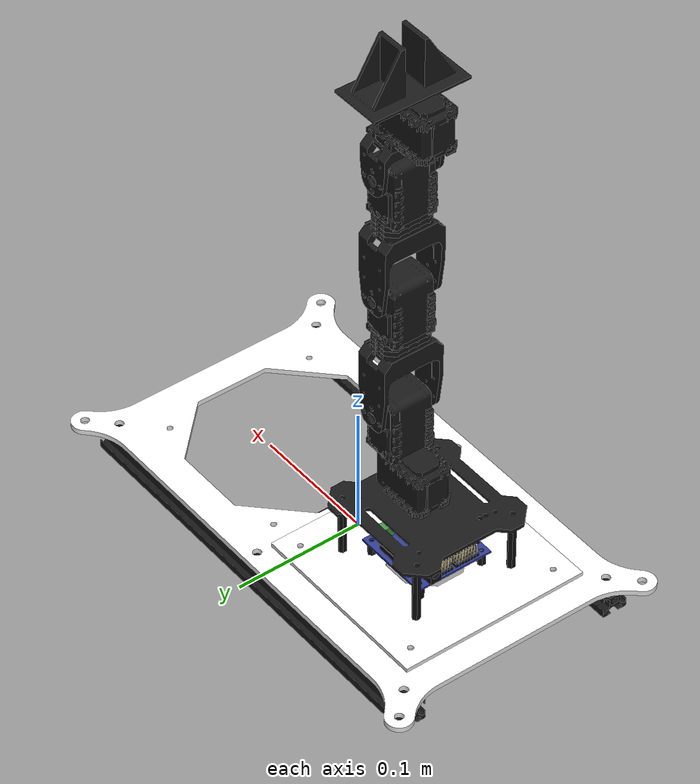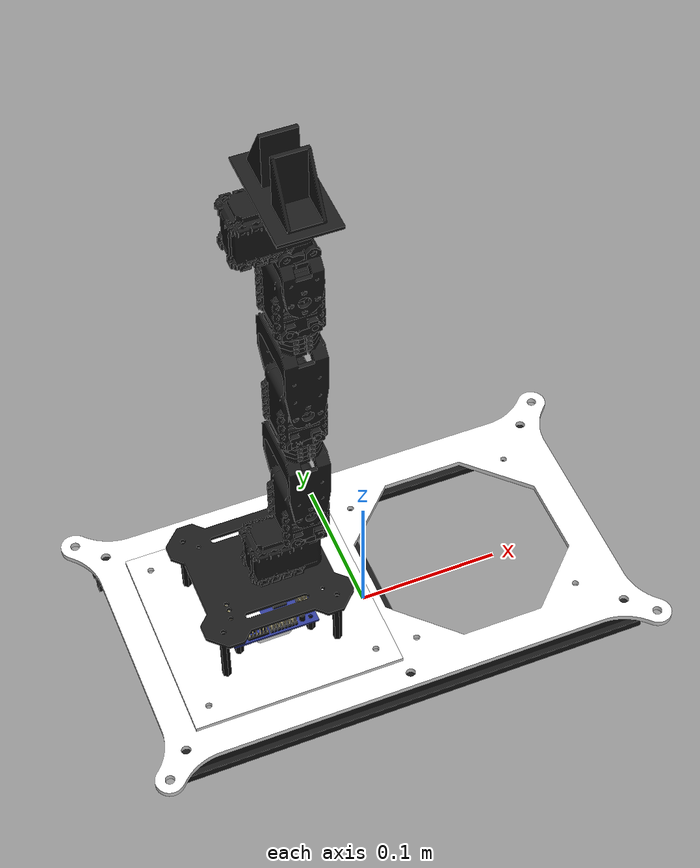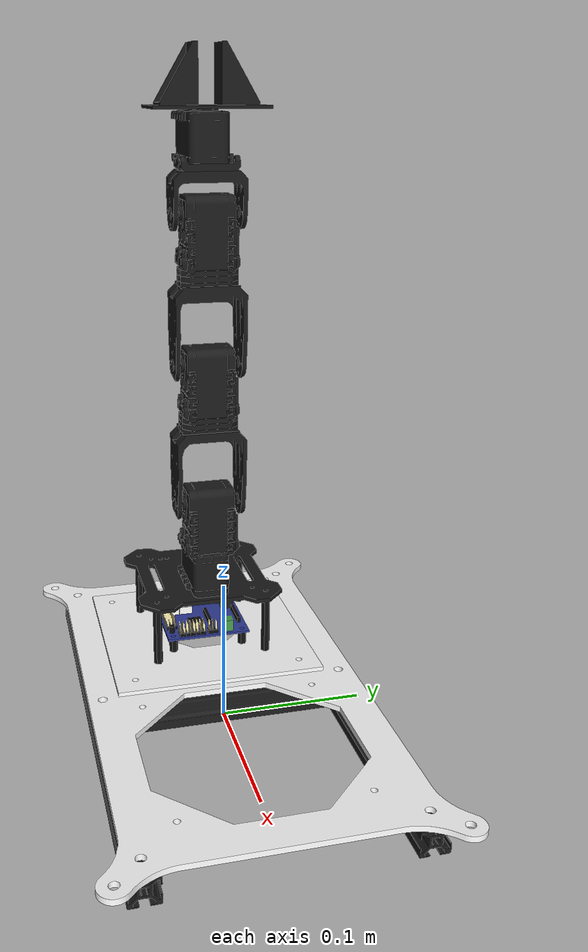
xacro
<?xml version="1.0"?>
<!-- URDF for PhantomX Pincher Robot Arm -->
<robot xmlns:xacro="http://wiki.ros.org/xacro" name="$(arg name)">

  <!-- Imported elements -->
  <xacro:include filename="$(find phantomx_pincher_description)/urdf/phantomx_pincher_arm.xacro"/>
  <xacro:include filename="$(find phantomx_pincher_description)/urdf/phantomx_pincher_mounting.xacro"/>
  <xacro:include filename="$(find phantomx_pincher_description)/urdf/phantomx_pincher.gazebo"/>

  <!-- Parameters -->
  <!-- Name of the robot (mandatory) -->
  <xacro:arg name="name" default="phantomx_pincher"/>
  <!-- Prefix for all entities -->
  <xacro:arg name="prefix" default="$(arg name)_"/>

  <!-- Flag to enable collision geometry -->
  <xacro:arg name="collision" default="true"/>

  <!-- Flag to enable ros2 controllers for manipulator -->
  <xacro:arg name="ros2_control" default="true"/>
  <!-- The ros2_control plugin that should be loaded for the manipulator ('fake', 'ign', 'real' or custom) -->
  <xacro:arg name="ros2_control_plugin" default="fake"/>
  <!-- The output control command interface provided by ros2_control ('position', 'velocity', 'effort' or certain combinations 'position,velocity') -->
  <xacro:arg name="ros2_control_command_interface" default="position"/>
  <!-- The filepath to parameters of ROS 2 controllers -->
  <xacro:arg name="ros2_controller_parameters" default="$(find phantomx_pincher_moveit_config)/config/controllers_$(arg ros2_control_command_interface).yaml"/>

  <!-- Flag to enable mimicking of the finger joints -->
  <xacro:arg name="mimic_finger_joints" default="false"/>

  <!-- Flag to preserve fixed joints and prevent lumping when generating SDF for Gazebo -->
  <xacro:arg name="gazebo_preserve_fixed_joint" default="false"/>

  <!-- Properties -->
  <xacro:property name="base_link" value="base_link"/>

  <!-- Robot -->
  <!-- Base link that can be used for fixing the robot to the world -->
  <xacro:phantomx_pincher_dummy_link link_name="$(arg prefix)${base_link}" gazebo_preserve_fixed_joint="$(arg gazebo_preserve_fixed_joint)"/>
  <joint name="$(arg prefix)${base_link}_joint" type="fixed">
    <parent link="$(arg prefix)${base_link}"/>
    <child link="$(arg prefix)task_board_link"/>
  </joint>

  <!-- Mount -->
  <xacro:task_board prefix="$(arg prefix)" child="task_board_mount_link" collision="$(arg collision)" gazebo_preserve_fixed_joint="$(arg gazebo_preserve_fixed_joint)"/>
  <xacro:task_board_mount prefix="$(arg prefix)" child="base_mount_link" collision="$(arg collision)" gazebo_preserve_fixed_joint="$(arg gazebo_preserve_fixed_joint)"/>
  <xacro:base_mount prefix="$(arg prefix)" child="arm_base_link" collision="$(arg collision)" gazebo_preserve_fixed_joint="$(arg gazebo_preserve_fixed_joint)"/>

  <!-- Arm -->
  <xacro:phantomx_pincher prefix="$(arg prefix)" base_link="arm_base_link" collision="$(arg collision)" ros2_control="$(arg ros2_control)" ros2_control_plugin="$(arg ros2_control_plugin)" ros2_control_command_interface="$(arg ros2_control_command_interface)" mimic_finger_joints="$(arg mimic_finger_joints)" gazebo_preserve_fixed_joint="$(arg gazebo_preserve_fixed_joint)"/>

  <!-- Gazebo - ROS 2 control (Ignition) -->
  <xacro:if value="$(arg ros2_control)">
    <xacro:if value="${'ign' in '$(arg ros2_control_plugin)' or 'gz' in '$(arg ros2_control_plugin)'}">
      <xacro:ign_ros2_control controller_parameters="$(find phantomx_pincher_moveit_config)/config/controllers_$(arg ros2_control_command_interface).yaml"/>
    </xacro:if>
  </xacro:if>
</robot>

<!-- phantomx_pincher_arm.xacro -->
<!-- Xacro for PhantomX Pincher Robot Arm arm -->
<robot xmlns:xacro="http://ros.org/wiki/xacro">

  <!-- Imported elements -->
  <xacro:include filename="$(find phantomx_pincher_description)/urdf/phantomx_pincher_hardware.xacro"/>
  <xacro:include filename="$(find phantomx_pincher_description)/urdf/phantomx_pincher.ros2_control"/>

  <!-- Properties -->
  <xacro:property name="ax12_height" value="0.032"/>
  <xacro:property name="ax12_width" value="0.038"/>
  <xacro:property name="f2_height" value="0.0265"/>
  <xacro:property name="f4_height" value="0.0525"/>
  <xacro:property name="f10_height" value="0.004"/>
  <xacro:property name="finger_centre_offset_x" value="0.019"/>
  <xacro:property name="finger_centre_offset_y" value="0.0115"/>

  <xacro:property name="joints_velocity_limit" value="${pi/2}"/>
  <xacro:property name="pan_joint_lower_limit" value="${-150*pi/180}"/>
  <xacro:property name="pan_joint_upper_limit" value="${150*pi/180}"/>
  <xacro:property name="shoulder_joint_lower_limit" value="${-120*pi/180}"/>
  <xacro:property name="shoulder_joint_upper_limit" value="${120*pi/180}"/>
  <xacro:property name="elbow_joint_lower_limit" value="${-139*pi/180}"/>
  <xacro:property name="elbow_joint_upper_limit" value="${139*pi/180}"/>
  <xacro:property name="wrist_joint_lower_limit" value="${-98*pi/180}"/>
  <xacro:property name="wrist_joint_upper_limit" value="${103*pi/180}"/>

  <!-- Macro -->
  <xacro:macro name="phantomx_pincher" params="
    prefix
    base_link:=base_link
    collision:=true
    ros2_control:=true
    ros2_control_plugin:=fake
    ros2_control_command_interface:=position
    mimic_finger_joints:=false
    gazebo_preserve_fixed_joint:=false
  ">
    <!-- Base link of the arm, which can be used to attach it to the rest of the world -->
    <link name="${prefix}${base_link}"/>

    <!-- Shoulder Pan -->
    <xacro:dynamixel_ax12_fixed prefix="${prefix}" parent="${base_link}" name="arm_shoulder_pan_servo" joint_origin_xyz="0.0 0.0 0.0" joint_origin_rpy="${pi/2} 0.0 ${pi/2}" collision="${collision}" gazebo_preserve_fixed_joint="${gazebo_preserve_fixed_joint}"/>
    <xacro:bioloid_f3_revolute prefix="${prefix}" parent="arm_shoulder_pan_servo_link" name="arm_shoulder_pan" joint_velocity_limit="${joints_velocity_limit}" joint_lower_limit="${pan_joint_lower_limit}" joint_upper_limit="${pan_joint_upper_limit}" joint_origin_xyz="0 ${ax12_width/2} 0.0" joint_origin_rpy="${-pi/2} ${pi/2} ${pi}" collision="${collision}" gazebo_preserve_fixed_joint="${gazebo_preserve_fixed_joint}"/>

    <!-- Shoulder Lift -->
    <xacro:dynamixel_ax12_fixed prefix="${prefix}" parent="arm_shoulder_pan_link" name="arm_shoulder_lift_servo" joint_origin_xyz="0.0 0.0 ${-ax12_height-f10_height+0.001}" joint_origin_rpy="0.0 ${pi} 0.0" collision="${collision}" gazebo_preserve_fixed_joint="${gazebo_preserve_fixed_joint}"/>
    <xacro:bioloid_f4_revolute prefix="${prefix}" parent="arm_shoulder_lift_servo_link" name="arm_shoulder_lift" joint_velocity_limit="${joints_velocity_limit}" joint_lower_limit="${shoulder_joint_lower_limit}" joint_upper_limit="${shoulder_joint_upper_limit}" joint_origin_xyz="0.0 0.0 0.0" joint_origin_rpy="0.0 0.0 0.0" collision="${collision}" gazebo_preserve_fixed_joint="${gazebo_preserve_fixed_joint}"/>
    <xacro:bioloid_f10_fixed prefix="${prefix}" parent="arm_shoulder_lift_link" name="arm_shoulder_F10_0" joint_origin_xyz="0.0 0.0 ${f4_height+f10_height/2}" joint_origin_rpy="0.0 0.0 0.0" collision="${collision}" gazebo_preserve_fixed_joint="${gazebo_preserve_fixed_joint}"/>
    <xacro:bioloid_f10_fixed prefix="${prefix}" parent="arm_shoulder_F10_0_link" name="arm_shoulder_F10_1" joint_origin_xyz="0.0 0.0 ${f10_height}" joint_origin_rpy="0.0 0.0 0.0" collision="${collision}" gazebo_preserve_fixed_joint="${gazebo_preserve_fixed_joint}"/>
    <xacro:bioloid_f10_fixed prefix="${prefix}" parent="arm_shoulder_F10_1_link" name="arm_shoulder_F10_2" joint_origin_xyz="0.0 0.0 ${f10_height}" joint_origin_rpy="0.0 0.0 0.0" collision="${collision}" gazebo_preserve_fixed_joint="${gazebo_preserve_fixed_joint}"/>
    <xacro:bioloid_f3_fixed prefix="${prefix}" parent="arm_shoulder_F10_2_link" name="arm_shoulder_F3_0" joint_origin_xyz="0.0 0.0 ${f10_height/2}" joint_origin_rpy="0.0 ${pi} 0.0" collision="${collision}" gazebo_preserve_fixed_joint="${gazebo_preserve_fixed_joint}"/>

    <!-- Elbow -->
    <xacro:dynamixel_ax12_fixed prefix="${prefix}" parent="arm_shoulder_F3_0_link" name="arm_elbow_flex_servo" joint_origin_xyz="0.0 0.0 ${-ax12_height-f10_height+0.001}" joint_origin_rpy="0.0 ${pi} 0.0" collision="${collision}" gazebo_preserve_fixed_joint="${gazebo_preserve_fixed_joint}"/>
    <xacro:bioloid_f4_revolute prefix="${prefix}" parent="arm_elbow_flex_servo_link" name="arm_elbow_flex" joint_velocity_limit="${joints_velocity_limit}" joint_lower_limit="${elbow_joint_lower_limit}" joint_upper_limit="${elbow_joint_upper_limit}" joint_origin_xyz="0.0 0.0 0.0" joint_origin_rpy="0.0 0.0 0.0" collision="${collision}" gazebo_preserve_fixed_joint="${gazebo_preserve_fixed_joint}"/>
    <xacro:bioloid_f10_fixed prefix="${prefix}" parent="arm_elbow_flex_link" name="arm_elbow_F10_0" joint_origin_xyz="0.0 0.0 ${f4_height+f10_height/2}" joint_origin_rpy="0.0 0.0 0.0" collision="${collision}" gazebo_preserve_fixed_joint="${gazebo_preserve_fixed_joint}"/>
    <xacro:bioloid_f10_fixed prefix="${prefix}" parent="arm_elbow_F10_0_link" name="arm_elbow_F10_1" joint_origin_xyz="0.0 0.0 ${f10_height}" joint_origin_rpy="0.0 0.0 0.0" collision="${collision}" gazebo_preserve_fixed_joint="${gazebo_preserve_fixed_joint}"/>
    <xacro:bioloid_f10_fixed prefix="${prefix}" parent="arm_elbow_F10_1_link" name="arm_elbow_F10_2" joint_origin_xyz="0.0 0.0 ${f10_height}" joint_origin_rpy="0.0 0.0 0.0" collision="${collision}" gazebo_preserve_fixed_joint="${gazebo_preserve_fixed_joint}"/>
    <xacro:bioloid_f3_fixed prefix="${prefix}" parent="arm_elbow_F10_2_link" name="arm_elbow_F3_0" joint_origin_xyz="0.0 0.0 ${f10_height/2}" joint_origin_rpy="0.0 ${pi} 0.0" collision="${collision}" gazebo_preserve_fixed_joint="${gazebo_preserve_fixed_joint}"/>

    <!-- Wrist -->
    <xacro:dynamixel_ax12_fixed prefix="${prefix}" parent="arm_elbow_F3_0_link" name="arm_wrist_flex_servo" joint_origin_xyz="0.0 0.0 ${-ax12_height-f10_height+0.001}" joint_origin_rpy="0.0 ${pi} 0.0" collision="${collision}" gazebo_preserve_fixed_joint="${gazebo_preserve_fixed_joint}"/>
    <xacro:bioloid_f2_revolute prefix="${prefix}" parent="arm_wrist_flex_servo_link" name="arm_wrist_flex" joint_velocity_limit="${joints_velocity_limit}" joint_lower_limit="${wrist_joint_lower_limit}" joint_upper_limit="${wrist_joint_upper_limit}" joint_origin_xyz="0.0 0.0 0.0" joint_origin_rpy="0.0 0.0 0.0" collision="${collision}" gazebo_preserve_fixed_joint="${gazebo_preserve_fixed_joint}"/>
    <xacro:bioloid_f3_fixed prefix="${prefix}" parent="arm_wrist_flex_link" name="arm_wrist_F3_0" joint_origin_xyz="0.0 0.0 ${f2_height}" joint_origin_rpy="0 ${pi} ${-pi}" collision="${collision}" gazebo_preserve_fixed_joint="${gazebo_preserve_fixed_joint}"/>

    <!-- Gripper -->
    <xacro:dynamixel_ax12_fixed prefix="${prefix}" parent="arm_wrist_F3_0_link" name="gripper_servo" joint_origin_xyz="0.0 0.0 ${-ax12_width/2}" joint_origin_rpy="${pi/2} ${pi} ${pi/2}" collision="${collision}" gazebo_preserve_fixed_joint="${gazebo_preserve_fixed_joint}"/>
    <xacro:gripper_finger_base prefix="${prefix}" parent="gripper_servo_link" name="gripper_finger_base" joint_origin_xyz="0 ${ax12_width/2} 0.0" joint_origin_rpy="${pi} 0.0 ${pi/2}" collision="${collision}" gazebo_preserve_fixed_joint="${gazebo_preserve_fixed_joint}"/>
    <xacro:pincher_finger prefix="${prefix}" parent="gripper_finger_base_link" name="gripper_finger1" joint_origin_xyz="${finger_centre_offset_x} ${finger_centre_offset_y} 0.0" joint_origin_rpy="${pi/2} 0.0 ${pi/2}" collision="${collision}" gazebo_preserve_fixed_joint="${gazebo_preserve_fixed_joint}"/>
    <!-- If enabled, mimic finger joints -->
    <xacro:if value="${mimic_finger_joints}">
      <xacro:pincher_finger prefix="${prefix}" parent="gripper_finger_base_link" name="gripper_finger2" joint_origin_xyz="${finger_centre_offset_x} ${-finger_centre_offset_y} 0.0" joint_origin_rpy="${pi/2} ${pi} ${pi/2}" collision="${collision}" gazebo_preserve_fixed_joint="${gazebo_preserve_fixed_joint}" mimic_joint="${prefix}gripper_finger1_joint"/>
    </xacro:if>
    <xacro:unless value="${mimic_finger_joints}">
      <xacro:pincher_finger prefix="${prefix}" parent="gripper_finger_base_link" name="gripper_finger2" joint_origin_xyz="${finger_centre_offset_x} ${-finger_centre_offset_y} 0.0" joint_origin_rpy="${pi/2} ${pi} ${pi/2}" collision="${collision}" gazebo_preserve_fixed_joint="${gazebo_preserve_fixed_joint}"/>
    </xacro:unless>

    <!-- Active joint for the gripper (only required for the real robot) -->
    <xacro:if value="${ros2_control}">
      <xacro:if value="${'real' in '$(arg ros2_control_plugin)'}">
        <xacro:fake_active_gripper_joint prefix="${prefix}" parent="gripper_finger_base_link" name="gripper" gazebo_preserve_fixed_joint="${gazebo_preserve_fixed_joint}"/>
      </xacro:if>
    </xacro:if>
    <xacro:unless value="${ros2_control}">
      <xacro:fake_active_gripper_joint prefix="${prefix}" parent="gripper_finger_base_link" name="gripper" gazebo_preserve_fixed_joint="${gazebo_preserve_fixed_joint}"/>
    </xacro:unless>

    <!-- End-effector -->
    <xacro:phantomx_pincher_virtual_link parent="${prefix}gripper_finger_base_link" link_name="${prefix}end_effector" joint_origin_xyz="${finger_centre_offset_x} 0.0 0.0" joint_origin_rpy="${pi/2} ${-pi/2} ${pi/2}" gazebo_preserve_fixed_joint="${gazebo_preserve_fixed_joint}"/>

    <!-- ROS 2 control -->
    <xacro:if value="${ros2_control}">
      <xacro:ros2_control_phantomx_pincher prefix="${prefix}" plugin="${ros2_control_plugin}" command_interface="${ros2_control_command_interface}"/>
    </xacro:if>
  </xacro:macro>

</robot>

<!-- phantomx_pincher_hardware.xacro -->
<!-- Macro for (repeated) components of PhantomX Pincher Robot Arm -->
<robot xmlns:xacro="http://ros.org/wiki/xacro">

  <!-- Imported elements -->
  <xacro:include filename="$(find phantomx_pincher_description)/urdf/phantomx_pincher_utils.xacro"/>

  <!-- Macro -->
  <xacro:property name="dynamixel_ax12_fixed_joint_type" value="fixed"/>
  <xacro:property name="dynamixel_ax12_fixed_link_mu" value="1.0"/>
  <xacro:property name="dynamixel_ax12_fixed_link_mesh" value="ax12"/>
  <xacro:property name="dynamixel_ax12_fixed_link_collision_type" value="box"/>
  <xacro:property name="dynamixel_ax12_fixed_link_collision_box_size" value="0.032 0.038 0.05"/>
  <xacro:property name="dynamixel_ax12_fixed_link_mesh_offset_collision_xyz" value="0.0 0.0 -0.0135"/>
  <xacro:macro name="dynamixel_ax12_fixed" params="
    prefix
    name
    parent
    joint_origin_xyz
    joint_origin_rpy
    collision:=true
    gazebo_preserve_fixed_joint:=false
  ">
    <!-- Note: `gazebo_preserve_fixed_joint` cannot be enabled for dynamixel_ax12_fixed because the SDF conversion would fail -->
    <xacro:phantomx_pincher_joint parent="${prefix}${parent}" child="${prefix}${name}_link" joint_name="${prefix}${name}_joint" joint_type="${dynamixel_ax12_fixed_joint_type}" joint_origin_xyz="${joint_origin_xyz}" joint_origin_rpy="${joint_origin_rpy}" gazebo_preserve_fixed_joint="false"/>
    <xacro:phantomx_pincher_link link_name="${prefix}${name}_link" mesh="${dynamixel_ax12_fixed_link_mesh}" collision="${collision}" collision_type="${dynamixel_ax12_fixed_link_collision_type}" collision_box_size="${dynamixel_ax12_fixed_link_collision_box_size}" mesh_offset_collision_xyz="${dynamixel_ax12_fixed_link_mesh_offset_collision_xyz}" mu="${dynamixel_ax12_fixed_link_mu}"/>
  </xacro:macro>

  <!-- Macro -->
  <xacro:property name="bioloid_f3_fixed_joint_type" value="fixed"/>
  <xacro:property name="bioloid_f3_fixed_link_mu" value="1.0"/>
  <xacro:property name="bioloid_f3_fixed_link_mesh" value="f3"/>
  <xacro:property name="bioloid_f3_fixed_link_collision_type" value="box"/>
  <xacro:property name="bioloid_f3_fixed_link_collision_box_size" value="0.025 0.038 0.009"/>
  <xacro:property name="bioloid_f3_fixed_link_mesh_offset_collision_xyz" value="0.0 0.0 -0.0045"/>
  <xacro:macro name="bioloid_f3_fixed" params="
    prefix
    name
    parent
    joint_origin_xyz
    joint_origin_rpy
    collision:=true
    gazebo_preserve_fixed_joint:=false
  ">
    <xacro:phantomx_pincher_joint parent="${prefix}${parent}" child="${prefix}${name}_link" joint_name="${prefix}${name}_joint" joint_type="${bioloid_f3_fixed_joint_type}" joint_origin_xyz="${joint_origin_xyz}" joint_origin_rpy="${joint_origin_rpy}" gazebo_preserve_fixed_joint="${gazebo_preserve_fixed_joint}"/>
    <xacro:phantomx_pincher_link link_name="${prefix}${name}_link" mesh="${bioloid_f3_fixed_link_mesh}" collision="${collision}" collision_type="${bioloid_f3_fixed_link_collision_type}" collision_box_size="${bioloid_f3_fixed_link_collision_box_size}" mesh_offset_collision_xyz="${bioloid_f3_fixed_link_mesh_offset_collision_xyz}" mu="${bioloid_f3_fixed_link_mu}"/>
  </xacro:macro>

  <!-- Macro -->
  <xacro:property name="bioloid_f10_fixed_joint_type" value="fixed"/>
  <xacro:property name="bioloid_f10_fixed_link_mu" value="1.0"/>
  <xacro:property name="bioloid_f10_fixed_link_mesh" value="f10"/>
  <xacro:property name="bioloid_f10_fixed_link_collision_type" value="box"/>
  <xacro:property name="bioloid_f10_fixed_link_collision_box_size" value="0.025 0.038 0.004"/>
  <xacro:property name="bioloid_f10_fixed_link_mesh_offset_collision_xyz" value="0.0 0.0 0.0"/>
  <xacro:macro name="bioloid_f10_fixed" params="
    prefix
    name
    parent
    joint_origin_xyz
    joint_origin_rpy
    collision:=true
    gazebo_preserve_fixed_joint:=false
  ">
    <xacro:phantomx_pincher_joint parent="${prefix}${parent}" child="${prefix}${name}_link" joint_name="${prefix}${name}_joint" joint_type="${bioloid_f10_fixed_joint_type}" joint_origin_xyz="${joint_origin_xyz}" joint_origin_rpy="${joint_origin_rpy}" gazebo_preserve_fixed_joint="${gazebo_preserve_fixed_joint}"/>
    <xacro:phantomx_pincher_link link_name="${prefix}${name}_link" mesh="${bioloid_f10_fixed_link_mesh}" collision="${collision}" collision_type="${bioloid_f10_fixed_link_collision_type}" collision_box_size="${bioloid_f10_fixed_link_collision_box_size}" mesh_offset_collision_xyz="${bioloid_f10_fixed_link_mesh_offset_collision_xyz}" mu="${bioloid_f10_fixed_link_mu}"/>
  </xacro:macro>

  <!-- Macro -->
  <xacro:property name="bioloid_f2_revolute_joint_type" value="revolute"/>
  <xacro:property name="bioloid_f2_revolute_joint_axis_xyz" value="0.0 1.0 0.0"/>
  <xacro:property name="bioloid_f2_revolute_joint_torque_limit" value="30"/>
  <xacro:property name="bioloid_f2_revolute_joint_damping" value="1.4"/>
  <xacro:property name="bioloid_f2_revolute_joint_friction" value="0.02"/>
  <xacro:property name="bioloid_f2_revolute_link_mu" value="1.0"/>
  <xacro:property name="bioloid_f2_revolute_link_mesh" value="f2"/>
  <xacro:property name="bioloid_f2_revolute_link_collision_type" value="box"/>
  <xacro:property name="bioloid_f2_revolute_link_collision_box_size" value="0.025 0.0485 0.0375"/>
  <xacro:property name="bioloid_f2_revolute_link_mesh_offset_collision_xyz" value="0.0 0.0 0.00775"/>
  <xacro:macro name="bioloid_f2_revolute" params="
    prefix
    name
    parent
    joint_origin_xyz
    joint_origin_rpy
    joint_lower_limit
    joint_upper_limit
    joint_velocity_limit
    collision:=true
    gazebo_preserve_fixed_joint:=false
  ">
    <xacro:phantomx_pincher_joint parent="${prefix}${parent}" child="${prefix}${name}_link" joint_name="${prefix}${name}_joint" joint_type="${bioloid_f2_revolute_joint_type}" joint_origin_xyz="${joint_origin_xyz}" joint_origin_rpy="${joint_origin_rpy}" joint_axis_xyz="${bioloid_f2_revolute_joint_axis_xyz}" joint_lower_limit="${joint_lower_limit}" joint_upper_limit="${joint_upper_limit}" joint_velocity_limit="${joint_velocity_limit}" joint_torque_limit="${bioloid_f2_revolute_joint_torque_limit}" joint_damping="${bioloid_f2_revolute_joint_damping}" joint_friction="${bioloid_f2_revolute_joint_friction}" gazebo_preserve_fixed_joint="${gazebo_preserve_fixed_joint}"/>
    <xacro:phantomx_pincher_link link_name="${prefix}${name}_link" mesh="${bioloid_f2_revolute_link_mesh}" collision="${collision}" collision_type="${bioloid_f2_revolute_link_collision_type}" collision_box_size="${bioloid_f2_revolute_link_collision_box_size}" mesh_offset_collision_xyz="${bioloid_f2_revolute_link_mesh_offset_collision_xyz}" mu="${bioloid_f2_revolute_link_mu}"/>
  </xacro:macro>

  <!-- Macro -->
  <xacro:property name="bioloid_f3_revolute_joint_type" value="revolute"/>
  <xacro:property name="bioloid_f3_revolute_joint_axis_xyz" value="0.0 0.0 -1.0"/>
  <xacro:property name="bioloid_f3_revolute_joint_torque_limit" value="30"/>
  <xacro:property name="bioloid_f3_revolute_joint_damping" value="1.4"/>
  <xacro:property name="bioloid_f3_revolute_joint_friction" value="0.02"/>
  <xacro:property name="bioloid_f3_revolute_link_mu" value="1.0"/>
  <xacro:property name="bioloid_f3_revolute_link_mesh" value="f3"/>
  <xacro:property name="bioloid_f3_revolute_link_collision_type" value="box"/>
  <xacro:property name="bioloid_f3_revolute_link_collision_box_size" value="0.025 0.038 0.009"/>
  <xacro:property name="bioloid_f3_revolute_link_mesh_offset_collision_xyz" value="0.0 0.0 -0.0045"/>
  <xacro:macro name="bioloid_f3_revolute" params="
    prefix
    name
    parent
    joint_origin_xyz
    joint_origin_rpy
    joint_lower_limit
    joint_upper_limit
    joint_velocity_limit
    collision:=true
    gazebo_preserve_fixed_joint:=false
  ">
    <xacro:phantomx_pincher_joint parent="${prefix}${parent}" child="${prefix}${name}_link" joint_name="${prefix}${name}_joint" joint_type="${bioloid_f3_revolute_joint_type}" joint_origin_xyz="${joint_origin_xyz}" joint_origin_rpy="${joint_origin_rpy}" joint_axis_xyz="${bioloid_f3_revolute_joint_axis_xyz}" joint_lower_limit="${joint_lower_limit}" joint_upper_limit="${joint_upper_limit}" joint_velocity_limit="${joint_velocity_limit}" joint_torque_limit="${bioloid_f3_revolute_joint_torque_limit}" joint_damping="${bioloid_f3_revolute_joint_damping}" joint_friction="${bioloid_f3_revolute_joint_friction}" gazebo_preserve_fixed_joint="${gazebo_preserve_fixed_joint}"/>
    <xacro:phantomx_pincher_link link_name="${prefix}${name}_link" mesh="${bioloid_f3_revolute_link_mesh}" collision="${collision}" collision_type="${bioloid_f3_revolute_link_collision_type}" collision_box_size="${bioloid_f3_revolute_link_collision_box_size}" mesh_offset_collision_xyz="${bioloid_f3_revolute_link_mesh_offset_collision_xyz}" mu="${bioloid_f3_revolute_link_mu}"/>
  </xacro:macro>

  <!-- Macro -->
  <xacro:property name="bioloid_f4_revolute_joint_type" value="revolute"/>
  <xacro:property name="bioloid_f4_revolute_joint_axis_xyz" value="0.0 1.0 0.0"/>
  <xacro:property name="bioloid_f4_revolute_joint_torque_limit" value="30"/>
  <xacro:property name="bioloid_f4_revolute_joint_damping" value="1.4"/>
  <xacro:property name="bioloid_f4_revolute_joint_friction" value="0.02"/>
  <xacro:property name="bioloid_f4_revolute_link_mu" value="1.0"/>
  <xacro:property name="bioloid_f4_revolute_link_mesh" value="f4"/>
  <xacro:property name="bioloid_f4_revolute_link_collision_type" value="box"/>
  <xacro:property name="bioloid_f4_revolute_link_collision_box_size" value="0.028 0.0485 0.065"/>
  <xacro:property name="bioloid_f4_revolute_link_mesh_offset_collision_xyz" value="0.0 0.0 0.0215"/>
  <xacro:macro name="bioloid_f4_revolute" params="
    prefix
    name
    parent
    joint_origin_xyz
    joint_origin_rpy
    joint_lower_limit
    joint_upper_limit
    joint_velocity_limit
    collision:=true
    gazebo_preserve_fixed_joint:=false
  ">
    <xacro:phantomx_pincher_joint parent="${prefix}${parent}" child="${prefix}${name}_link" joint_name="${prefix}${name}_joint" joint_type="${bioloid_f4_revolute_joint_type}" joint_origin_xyz="${joint_origin_xyz}" joint_origin_rpy="${joint_origin_rpy}" joint_axis_xyz="${bioloid_f4_revolute_joint_axis_xyz}" joint_lower_limit="${joint_lower_limit}" joint_upper_limit="${joint_upper_limit}" joint_velocity_limit="${joint_velocity_limit}" joint_torque_limit="${bioloid_f4_revolute_joint_torque_limit}" joint_damping="${bioloid_f4_revolute_joint_damping}" joint_friction="${bioloid_f4_revolute_joint_friction}" gazebo_preserve_fixed_joint="${gazebo_preserve_fixed_joint}"/>
    <xacro:phantomx_pincher_link link_name="${prefix}${name}_link" mesh="${bioloid_f4_revolute_link_mesh}" collision="${collision}" collision_type="${bioloid_f4_revolute_link_collision_type}" collision_box_size="${bioloid_f4_revolute_link_collision_box_size}" mesh_offset_collision_xyz="${bioloid_f4_revolute_link_mesh_offset_collision_xyz}" mu="${bioloid_f4_revolute_link_mu}"/>
  </xacro:macro>

  <!-- Macro -->
  <xacro:property name="gripper_finger_base_joint_type" value="fixed"/>
  <xacro:property name="gripper_finger_base_link_mu" value="1.0"/>
  <xacro:property name="gripper_finger_base_link_mesh" value="gripper_base"/>
  <xacro:property name="gripper_finger_base_link_collision_type" value="box"/>
  <xacro:property name="gripper_finger_base_link_collision_box_size" value="0.002 0.075 0.040"/>
  <xacro:property name="gripper_finger_base_link_mesh_offset_collision_xyz" value="0.0 0.0 0.0"/>
  <xacro:macro name="gripper_finger_base" params="
    prefix
    name
    parent
    joint_origin_xyz
    joint_origin_rpy
    collision:=true
    gazebo_preserve_fixed_joint:=false
  ">
    <xacro:phantomx_pincher_joint parent="${prefix}${parent}" child="${prefix}${name}_link" joint_name="${prefix}${name}_joint" joint_type="${gripper_finger_base_joint_type}" joint_origin_xyz="${joint_origin_xyz}" joint_origin_rpy="${joint_origin_rpy}" gazebo_preserve_fixed_joint="${gazebo_preserve_fixed_joint}"/>
    <xacro:phantomx_pincher_link link_name="${prefix}${name}_link" mesh="${gripper_finger_base_link_mesh}" collision="${collision}" collision_type="${gripper_finger_base_link_collision_type}" collision_box_size="${gripper_finger_base_link_collision_box_size}" mesh_offset_collision_xyz="${gripper_finger_base_link_mesh_offset_collision_xyz}" mu="${gripper_finger_base_link_mu}"/>
  </xacro:macro>

  <!-- Macro -->
  <xacro:property name="pincher_finger_joint_type" value="prismatic"/>
  <xacro:property name="pincher_finger_joint_axis_xyz" value="1.0 0.0 0.0"/>
  <xacro:property name="pincher_finger_joint_lower_limit" value="0.001"/>
  <xacro:property name="pincher_finger_joint_upper_limit" value="0.0158"/>
  <xacro:property name="pincher_finger_joint_velocity_limit" value="0.01"/>
  <xacro:property name="pincher_finger_joint_torque_limit" value="30"/>
  <xacro:property name="pincher_finger_joint_damping" value="1.8"/>
  <xacro:property name="pincher_finger_joint_friction" value="0.06"/>
  <xacro:property name="pincher_finger_link_mu" value="1.0"/>
  <xacro:property name="pincher_finger_link_mesh" value="finger"/>
  <xacro:property name="pincher_finger_link_collision_type" value="mesh"/>
  <xacro:macro name="pincher_finger" params="
    prefix
    name
    parent
    joint_origin_xyz
    joint_origin_rpy
    collision:=true
    mimic_joint:=none
    gazebo_preserve_fixed_joint:=false
  ">
    <xacro:phantomx_pincher_joint parent="${prefix}${parent}" child="${prefix}${name}_link" joint_name="${prefix}${name}_joint" joint_type="${pincher_finger_joint_type}" joint_origin_xyz="${joint_origin_xyz}" joint_origin_rpy="${joint_origin_rpy}" joint_axis_xyz="${pincher_finger_joint_axis_xyz}" joint_lower_limit="${pincher_finger_joint_lower_limit}" joint_upper_limit="${pincher_finger_joint_upper_limit}" joint_velocity_limit="${pincher_finger_joint_velocity_limit}" joint_torque_limit="${pincher_finger_joint_torque_limit}" joint_damping="${pincher_finger_joint_damping}" joint_friction="${pincher_finger_joint_friction}" gazebo_preserve_fixed_joint="${gazebo_preserve_fixed_joint}" mimic_joint="${mimic_joint}"/>
    <xacro:phantomx_pincher_link link_name="${prefix}${name}_link" mesh="${pincher_finger_link_mesh}" collision="${collision}" collision_type="${pincher_finger_link_collision_type}" mu="${pincher_finger_link_mu}"/>
  </xacro:macro>

  <!-- Macro -->
  <xacro:property name="fake_active_gripper_joint_type" value="revolute"/>
  <xacro:property name="fake_active_gripper_joint_axis_xyz" value="1.0 0.0 0.0"/>
  <xacro:property name="fake_active_gripper_joint_torque_limit" value="30"/>
  <xacro:property name="fake_active_gripper_joint_velocity_limit" value="${3*pi/4}"/>
  <xacro:property name="fake_active_gripper_joint_lower_limit" value="${-149*pi/180}"/>
  <xacro:property name="fake_active_gripper_joint_upper_limit" value="0.0"/>
  <xacro:macro name="fake_active_gripper_joint" params="
    prefix
    name
    parent
    joint_origin_xyz:=${default_vector3}
    joint_origin_rpy:=${default_vector3}
    joint_axis_xyz:=${fake_active_gripper_joint_axis_xyz}
    joint_torque_limit:=${fake_active_gripper_joint_torque_limit}
    joint_velocity_limit:=${fake_active_gripper_joint_velocity_limit}
    joint_lower_limit:=${fake_active_gripper_joint_lower_limit}
    joint_upper_limit:=${fake_active_gripper_joint_upper_limit}
    gazebo_preserve_fixed_joint:=false
  ">
    <xacro:phantomx_pincher_dummy_link link_name="${prefix}${name}_link" gazebo_preserve_fixed_joint="${gazebo_preserve_fixed_joint}"/>
    <joint name="${prefix}${name}_joint" type="${fake_active_gripper_joint_type}">
    <origin xyz="${joint_origin_xyz}" rpy="${joint_origin_rpy}"/>
    <axis xyz="${joint_axis_xyz}"/>
    <limit effort="${joint_torque_limit}" velocity="${joint_velocity_limit}" lower="${joint_lower_limit}" upper="${joint_upper_limit}"/>
    <parent link="${prefix}${parent}"/>
    <child link="${prefix}${name}_link"/>
    </joint>
  </xacro:macro>

</robot>

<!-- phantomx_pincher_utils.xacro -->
<!-- Macros for general boilerplate -->
<robot xmlns:xacro="http://ros.org/wiki/xacro">

  <!-- Imported elements -->
  <xacro:include filename="$(find phantomx_pincher_description)/urdf/phantomx_pincher_inertial.xacro"/>

  <!-- Properties -->
  <xacro:property name="default_string" value=""/>
  <xacro:property name="default_vector3" value="0.0 0.0 0.0"/>

  <!-- Macro -->
  <xacro:macro name="phantomx_pincher_link" params="
    link_name
    mesh
    visual:=true
    collision:=true
    collision_type:=mesh
    collision_box_size:=${default_vector3}
    mesh_offset_visual_xyz:=${default_vector3}
    mesh_offset_visual_rpy:=${default_vector3}
    mesh_offset_collision_xyz:=${default_vector3}
    mesh_offset_collision_rpy:=${default_vector3}
    mesh_offset_inertial_rpy:=${default_vector3}
    mu:=1.0
  ">
    <link name="${link_name}">
      <visual>
        <origin xyz="${mesh_offset_visual_xyz}" rpy="${mesh_offset_visual_rpy}"/>
        <geometry>
          <mesh filename="package://phantomx_pincher_description/meshes/visual/${mesh}.dae"/>
        </geometry>
      </visual>

      <xacro:if value="${collision}">
        <collision>
          <origin xyz="${mesh_offset_collision_xyz}" rpy="${mesh_offset_collision_rpy}"/>
          <geometry>
            <xacro:if value="${collision_type == 'mesh'}">
              <mesh filename="package://phantomx_pincher_description/meshes/collision/${mesh}.stl"/>
            </xacro:if>
            <xacro:if value="${collision_type == 'box'}">
              <box size="${collision_box_size}"/>
            </xacro:if>
          </geometry>
        </collision>
      </xacro:if>

      <xacro:phantomx_pincher_inertial mesh="${mesh}" mesh_offset_rpy="${mesh_offset_inertial_rpy}"/>
    </link>

    <gazebo reference="${link_name}">
      <mu1 value="${mu}"/>
      <mu2 value="${mu}"/>
    </gazebo>
  </xacro:macro>

  <!-- Macro -->
  <xacro:macro name="phantomx_pincher_joint" params="
    parent
    child
    joint_name
    joint_type
    joint_origin_xyz
    joint_origin_rpy
    joint_axis_xyz:=unset
    joint_lower_limit:=unset
    joint_upper_limit:=unset
    joint_velocity_limit:=unset
    joint_torque_limit:=unset
    joint_damping:=0.0
    joint_friction:=0.0
    mimic_joint:=none
    safety_limits:=false
    safety_position_margin:=0.0
    safety_k_position:=0.0
    safety_k_velocity:=0.0
    gazebo_spring_stiffness:=0.0
    gazebo_spring_reference:=0.0
    gazebo_preserve_fixed_joint:=false
  ">
    <!-- Make sure limits are set for non-fixed joints -->
    <xacro:unless value="${joint_type == 'fixed'}">
      <xacro:if value="${joint_axis_xyz == 'unset'}">
        <xacro:ERROR_joint_axis_xyz_undefined/>
      </xacro:if>
      <xacro:if value="${joint_lower_limit == 'unset'}">
        <xacro:ERROR_joint_lower_limit_undefined/>
      </xacro:if>
      <xacro:if value="${joint_upper_limit == 'unset'}">
        <xacro:ERROR_joint_upper_limit_undefined/>
      </xacro:if>
      <xacro:if value="${joint_velocity_limit == 'unset'}">
        <xacro:ERROR_joint_velocity_limit_undefined/>
      </xacro:if>
      <xacro:if value="${joint_torque_limit == 'unset'}">
        <xacro:ERROR_joint_torque_limit_undefined/>
      </xacro:if>
    </xacro:unless>

    <joint name="${joint_name}" type="${joint_type}">
      <parent link="${parent}"/>
      <child link="${child}"/>
      <origin xyz="${joint_origin_xyz}" rpy="${joint_origin_rpy}"/>
      <xacro:unless value="${joint_type == 'fixed'}">
        <axis xyz="${joint_axis_xyz}"/>
        <xacro:if value="${joint_type == 'continuous'}">
          <limit effort="${joint_torque_limit}" velocity="${joint_velocity_limit}"/>
        </xacro:if>
        <xacro:unless value="${joint_type == 'continuous'}">
          <limit lower="${joint_lower_limit}" upper="${joint_upper_limit}" effort="${joint_torque_limit}" velocity="${joint_velocity_limit}"/>
        </xacro:unless>
        <xacro:if value="${safety_limits}">
          <safety_controller soft_lower_limit="${joint_lower_limit+safety_position_margin}" soft_upper_limit="${joint_upper_limit-safety_position_margin}" k_position="${safety_k_position}" k_velocity="${safety_k_velocity}"/>
        </xacro:if>
        <dynamics damping="${joint_damping}" friction="${joint_friction}"/>
      </xacro:unless>
      <xacro:unless value="${mimic_joint == 'none'}">
        <mimic joint="${mimic_joint}"/>
      </xacro:unless>
    </joint>

    <!-- Spring stiffness and reference for non-fixed joint -->
    <xacro:unless value="${joint_type == 'fixed'}">
      <gazebo reference="${joint_name}">
        <springStiffness value="${gazebo_spring_stiffness}"/>
        <springReference value="${gazebo_spring_reference}"/>
      </gazebo>
    </xacro:unless>

    <!-- Preserve fixed joint, if desired -->
    <xacro:if value="${joint_type == 'fixed' and gazebo_preserve_fixed_joint}">
      <gazebo reference="${joint_name}">
        <preserveFixedJoint>true</preserveFixedJoint>
        <disableFixedJointLumping>true</disableFixedJointLumping>
      </gazebo>
    </xacro:if>
  </xacro:macro>

  <!-- Macro -->
  <xacro:macro name="phantomx_pincher_virtual_link" params="
    parent
    link_name
    joint_origin_xyz
    joint_origin_rpy
    gazebo_preserve_fixed_joint:=true
  ">
    <xacro:phantomx_pincher_dummy_link link_name="${link_name}" gazebo_preserve_fixed_joint="${gazebo_preserve_fixed_joint}"/>

    <joint name="${link_name}_virtual_joint" type="fixed">
      <parent link="${parent}"/>
      <child link="${link_name}"/>
      <origin xyz="${joint_origin_xyz}" rpy="${joint_origin_rpy}"/>
    </joint>
  </xacro:macro>

  <!-- Macro -->
  <xacro:macro name="phantomx_pincher_dummy_link" params="
    link_name
    gazebo_preserve_fixed_joint:=true
  ">
    <link name="${link_name}">
      <xacro:if value="${gazebo_preserve_fixed_joint}">
        <inertial>
          <mass value="1e-5"/>
          <inertia ixx="1e-35" iyy="1e-35" izz="1e-35" ixy="0.0" ixz="0.0" iyz="0.0"/>
        </inertial>
      </xacro:if>
    </link>

    <!-- Preserve fixed joint, if desired -->
    <xacro:if value="${gazebo_preserve_fixed_joint}">
      <gazebo reference="${link_name}_virtual_joint">
        <preserveFixedJoint>true</preserveFixedJoint>
        <disableFixedJointLumping>true</disableFixedJointLumping>
      </gazebo>
    </xacro:if>
  </xacro:macro>
</robot>

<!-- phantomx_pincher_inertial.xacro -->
<!-- Macro for inertial properties of PhantomX Pincher Robot Arm -->
<robot xmlns:xacro="http://www.ros.org/wiki/xacro">

  <!-- Macro -->
  <xacro:macro name="phantomx_pincher_inertial" params="mesh mesh_offset_rpy">
    <xacro:if value="${mesh == 'ax12'}">
      <inertial>
        <origin xyz="-7.38454e-07 0.000422614 -0.0130296" rpy="${mesh_offset_rpy}"/>
        <mass value="0.08139802400654242"/>
        <inertia ixx="2.3143627968295997e-05" iyy="1.9936031209683584e-05" izz="1.2576986445925398e-05" ixy="-6.904875516785507e-10" ixz="-2.4208698077741694e-10" iyz="3.504110421945422e-07"/>
      </inertial>
    </xacro:if>

    <xacro:if value="${mesh == 'f2'}">
      <inertial>
        <origin xyz="1.83625e-06 4.41782e-08 0.0154045" rpy="${mesh_offset_rpy}"/>
        <mass value="0.014479017200129543"/>
        <inertia ixx="6.472388590001224e-06" iyy="2.498962550910956e-06" izz="5.6994603934534456e-06" ixy="-1.892671596204799e-12" ixz="-3.0007457063740617e-10" iyz="-2.3584142968316667e-12"/>
      </inertial>
    </xacro:if>

    <xacro:if value="${mesh == 'f3'}">
      <inertial>
        <origin xyz="-1.72524e-06 4.83783e-07 -0.00240396" rpy="${mesh_offset_rpy}"/>
        <mass value="0.006374458272892439"/>
        <inertia ixx="9.270000220058128e-07" iyy="4.018633414376187e-07" izz="1.2864371800536346e-06" ixy="-2.5814168895313843e-12" ixz="-2.4985237649917935e-10" iyz="9.813034257837808e-12"/>
      </inertial>
    </xacro:if>

    <xacro:if value="${mesh == 'f4'}">
      <inertial>
        <origin xyz="-0.000589318 3.65417e-05 0.0288737" rpy="${mesh_offset_rpy}"/>
        <mass value="0.025203193826508614"/>
        <inertia ixx="1.997638801949545e-05" iyy="1.214970461462084e-05" izz="1.1427207264696245e-05" ixy="9.66261623973993e-10" ixz="1.0343105915459652e-06" iyz="-1.7113644679963033e-08"/>
      </inertial>
    </xacro:if>

    <xacro:if value="${mesh == 'f10'}">
      <inertial>
        <origin xyz="-8.67784e-06 -8.79317e-07 0.000171599" rpy="${mesh_offset_rpy}"/>
        <mass value="0.0035170756160130324"/>
        <inertia ixx="3.992017647723594e-07" iyy="2.2036114209006905e-07" izz="6.123206341186544e-07" ixy="-3.5246444817584626e-12" ixz="-9.729500575523489e-13" iyz="2.2872438374335695e-12"/>
      </inertial>
    </xacro:if>

    <xacro:if value="${mesh == 'finger'}">
      <inertial>
        <origin xyz="-0.00607194 -4.42132e-19 -0.00471261" rpy="${mesh_offset_rpy}"/>
        <mass value="0.009843256743296712"/>
        <inertia ixx="1.8229100836948666e-06" iyy="1.595545910676557e-06" izz="1.0262210845211422e-06" ixy="-2.797502899373518e-23" ixz="3.498974201392864e-07" iyz="4.770944797128244e-23"/>
      </inertial>
    </xacro:if>

    <xacro:if value="${mesh == 'gripper_base'}">
      <inertial>
        <origin xyz="0 2.98023e-08 0" rpy="${mesh_offset_rpy}"/>
        <mass value="0.011837674839899828"/>
        <inertia ixx="7.127260849628046e-06" iyy="1.5822994239366863e-06" izz="5.5528530038746866e-06" ixy="3.400011875409145e-24" ixz="-0.0" iyz="-0.0"/>
      </inertial>
    </xacro:if>

    <xacro:if value="${mesh == 'phantomx_pincher_mount'}">
      <inertial>
        <origin xyz="0.00037683 0.000627242 0.034281" rpy="${mesh_offset_rpy}"/>
        <mass value="0.04167327881348052"/>
        <inertia ixx="4.209466937688695e-05" iyy="4.06306356962411e-05" izz="6.067656565666726e-05" ixy="-3.983275834765508e-07" ixz="1.3653283599512486e-07" iyz="5.014723052473674e-07"/>
      </inertial>
    </xacro:if>

    <xacro:if value="${mesh == 'task_board_module_phantomx_pincher_mount'}">
      <inertial>
        <origin xyz="-4.50216e-09 -4.41466e-09 0.00149998" rpy="${mesh_offset_rpy}"/>
        <mass value="0.05832672118651948"/>
        <inertia ixx="0.0001172231384236186" iyy="0.00011722313733495664" izz="0.00023435878795674127" ixy="5.27948376375961e-14" ixz="3.9903733813665316e-22" iyz="2.1401492655855885e-23"/>
      </inertial>
    </xacro:if>

    <xacro:if value="${mesh == 'task_board'}">
      <inertial>
        <origin xyz="7.59924e-07 2.79305e-08 0.0164041" rpy="${mesh_offset_rpy}"/>
        <mass value="0.6"/>
        <inertia ixx="0.0065283400178141335" iyy="0.003398671922618594" izz="0.009860990026576852" ixy="-1.7343908287424124e-12" ixz="2.8936318115622572e-09" iyz="-8.805547978958671e-11"/>
      </inertial>
    </xacro:if>
  </xacro:macro>
</robot>

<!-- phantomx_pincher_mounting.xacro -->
<!-- Macro for mounting PhantomX Pincher Robot Arm -->
<robot xmlns:xacro="http://ros.org/wiki/xacro">

  <!-- Imported elements -->
  <xacro:include filename="$(find phantomx_pincher_description)/urdf/phantomx_pincher_utils.xacro"/>

  <!-- Macro -->
  <xacro:property name="base_mount_joint_name" value="base_mount_fixed_joint"/>
  <xacro:property name="base_mount_joint_type" value="fixed"/>
  <xacro:property name="base_mount_joint_origin_xyz" value="0.0 -0.0295 0.064"/>
  <xacro:property name="base_mount_joint_origin_rpy" value="0.0 0.0 ${-pi/2}"/>
  <xacro:property name="base_mount_link_name" value="base_mount_link"/>
  <xacro:property name="base_mount_link_mu" value="1.0"/>
  <xacro:property name="base_mount_link_mesh" value="phantomx_pincher_mount"/>
  <xacro:property name="base_mount_link_collision_type" value="box"/>
  <xacro:property name="base_mount_link_collision_box_size" value="0.104 0.104 0.048"/>
  <xacro:property name="base_mount_link_mesh_offset_collision_xyz" value="0.0 0.0 0.024"/>
  <xacro:macro name="base_mount" params="
    prefix
    child
    collision:=true
    gazebo_preserve_fixed_joint:=false
  ">
    <xacro:phantomx_pincher_joint parent="${prefix}${base_mount_link_name}" child="${prefix}${child}" joint_name="${prefix}${base_mount_joint_name}" joint_type="${base_mount_joint_type}" joint_origin_xyz="${base_mount_joint_origin_xyz}" joint_origin_rpy="${base_mount_joint_origin_rpy}" gazebo_preserve_fixed_joint="${gazebo_preserve_fixed_joint}"/>
    <xacro:phantomx_pincher_link link_name="${prefix}${base_mount_link_name}" mesh="${base_mount_link_mesh}" collision="${collision}" collision_type="${base_mount_link_collision_type}" collision_box_size="${base_mount_link_collision_box_size}" mesh_offset_collision_xyz="${base_mount_link_mesh_offset_collision_xyz}" mu="${base_mount_link_mu}"/>
  </xacro:macro>

  <!-- Macro -->
  <xacro:property name="task_board_mount_joint_name" value="task_board_mount_fixed_joint"/>
  <xacro:property name="task_board_mount_joint_type" value="fixed"/>
  <xacro:property name="task_board_mount_joint_origin_xyz" value="0.0 0.0 0.003"/>
  <xacro:property name="task_board_mount_joint_origin_rpy" value="0.0 0.0 0.0"/>
  <xacro:property name="task_board_mount_link_name" value="task_board_mount_link"/>
  <xacro:property name="task_board_mount_link_mu" value="1.0"/>
  <xacro:property name="task_board_mount_link_mesh" value="task_board_module_phantomx_pincher_mount"/>
  <xacro:property name="task_board_mount_link_collision_type" value="box"/>
  <xacro:property name="task_board_mount_link_collision_box_size" value="0.148 0.148 0.003"/>
  <xacro:property name="task_board_mount_link_mesh_offset_collision_xyz" value="0.0 0.0 0.0015"/>
  <xacro:macro name="task_board_mount" params="
    prefix
    child
    collision:=true
    gazebo_preserve_fixed_joint:=false
  ">
    <xacro:phantomx_pincher_joint parent="${prefix}${task_board_mount_link_name}" child="${prefix}${child}" joint_name="${prefix}${task_board_mount_joint_name}" joint_type="${task_board_mount_joint_type}" joint_origin_xyz="${task_board_mount_joint_origin_xyz}" joint_origin_rpy="${task_board_mount_joint_origin_rpy}" gazebo_preserve_fixed_joint="${gazebo_preserve_fixed_joint}"/>
    <xacro:phantomx_pincher_link link_name="${prefix}${task_board_mount_link_name}" mesh="${task_board_mount_link_mesh}" collision="${collision}" collision_type="${task_board_mount_link_collision_type}" collision_box_size="${task_board_mount_link_collision_box_size}" mesh_offset_collision_xyz="${task_board_mount_link_mesh_offset_collision_xyz}" mu="${task_board_mount_link_mu}"/>
  </xacro:macro>

  <!-- Macro -->
  <xacro:property name="task_board_joint_name" value="task_board_fixed_joint"/>
  <xacro:property name="task_board_joint_type" value="fixed"/>
  <xacro:property name="task_board_joint_origin_xyz" value="-0.075 0.0 0.024"/>
  <xacro:property name="task_board_joint_origin_rpy" value="0.0 0.0 ${pi/2}"/>
  <xacro:property name="task_board_link_name" value="task_board_link"/>
  <xacro:property name="task_board_link_mu" value="1.0"/>
  <xacro:property name="task_board_link_mesh" value="task_board"/>
  <xacro:property name="task_board_link_collision_type" value="mesh"/>
  <xacro:property name="task_board_module_joint_origin_xyz" value="0.075 0.0 0.024"/>
  <xacro:property name="task_board_module_joint_origin_rpy" value="0.0 0.0 0.0"/>
  <xacro:property name="task_board_module_link_name" value="task_board_module_link"/>
  <xacro:macro name="task_board" params="
    prefix
    child
    collision:=true
    gazebo_preserve_fixed_joint:=false
  ">
    <xacro:phantomx_pincher_joint parent="${prefix}${task_board_link_name}" child="${prefix}${child}" joint_name="${prefix}${task_board_joint_name}" joint_type="${task_board_joint_type}" joint_origin_xyz="${task_board_joint_origin_xyz}" joint_origin_rpy="${task_board_joint_origin_rpy}" gazebo_preserve_fixed_joint="${gazebo_preserve_fixed_joint}"/>
    <xacro:phantomx_pincher_link link_name="${prefix}${task_board_link_name}" mesh="${task_board_link_mesh}" collision="${collision}" collision_type="${task_board_link_collision_type}" mu="${task_board_link_mu}"/>

    <xacro:phantomx_pincher_virtual_link parent="${prefix}${task_board_link_name}" link_name="${prefix}${task_board_module_link_name}" joint_origin_xyz="${task_board_module_joint_origin_xyz}" joint_origin_rpy="${task_board_module_joint_origin_rpy}" gazebo_preserve_fixed_joint="${gazebo_preserve_fixed_joint}"/>
  </xacro:macro>

</robot>
